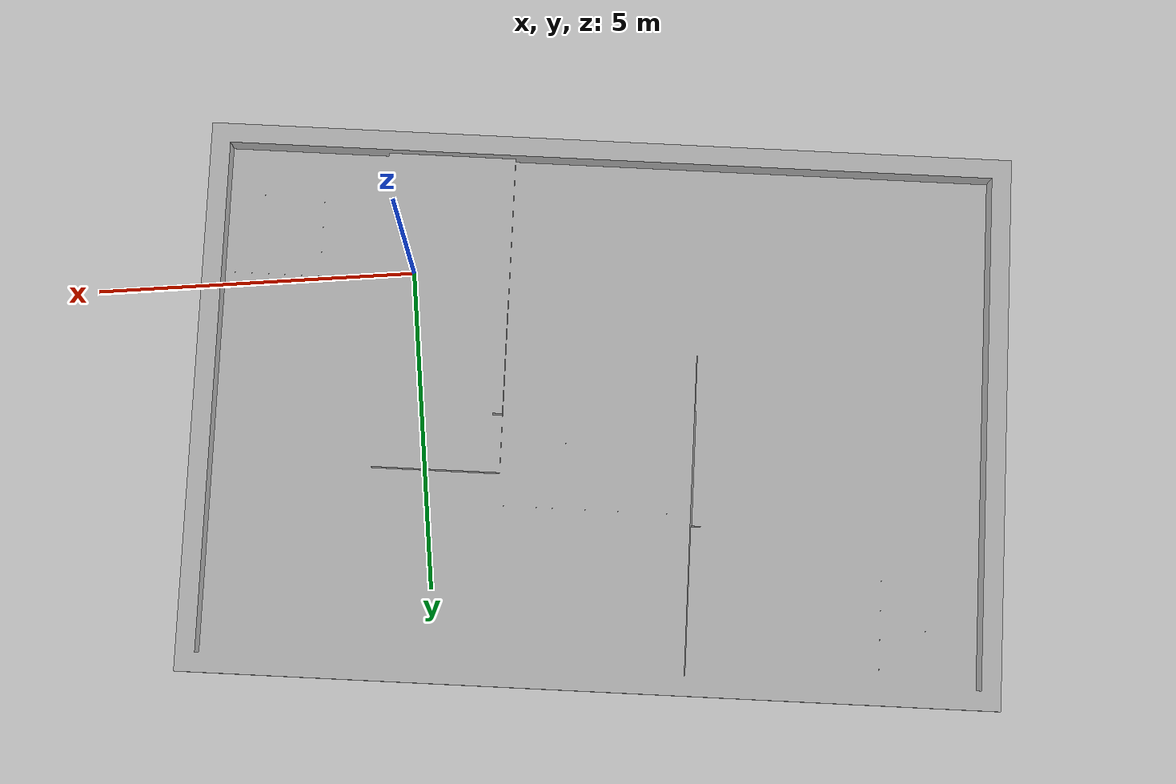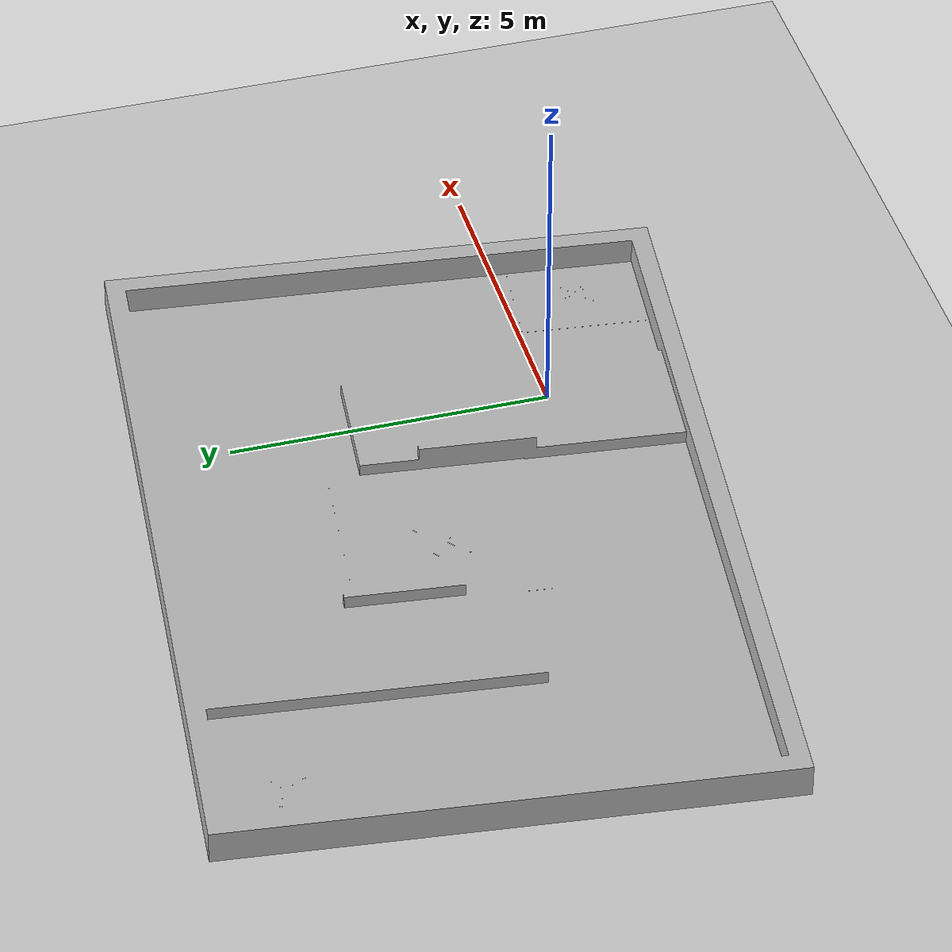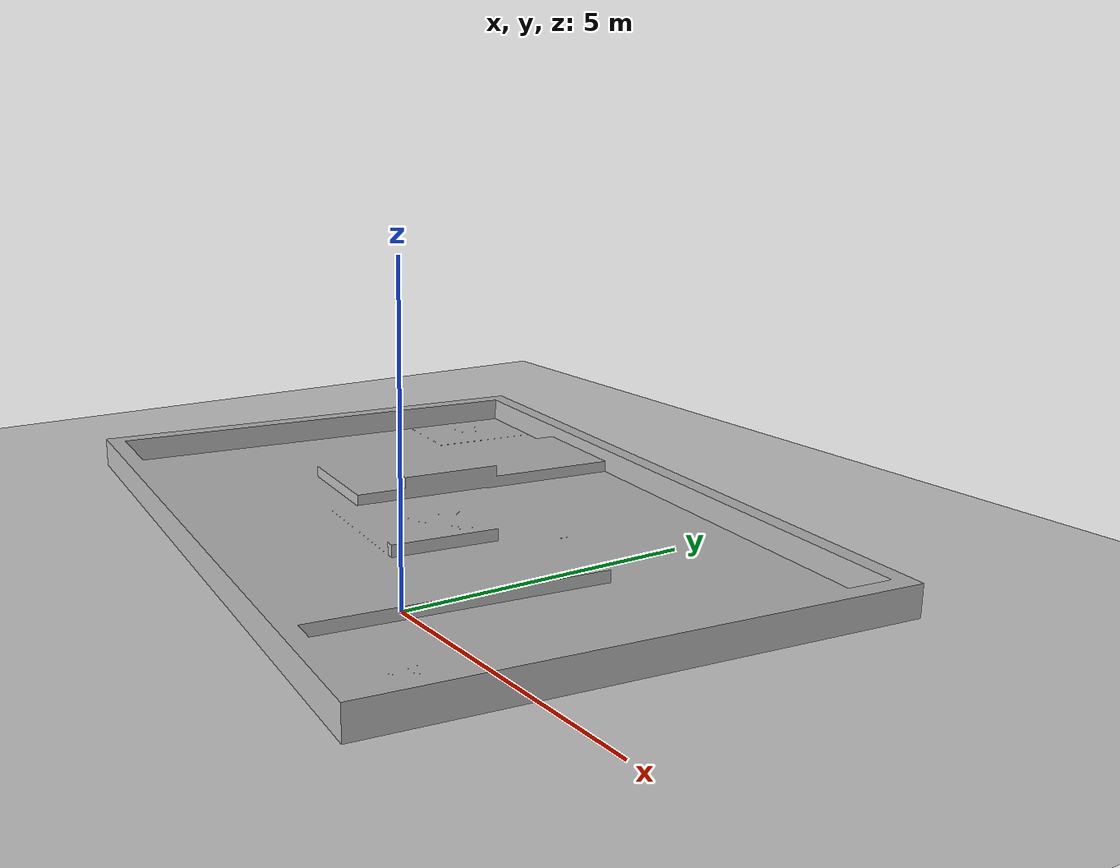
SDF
<sdf version="1.7">
 <world name="default">
  <light name="sun" type="directional">
   <pose>0 0 10 0 -0 0</pose>
   <diffuse>0.8 0.8 0.8 1</diffuse>
   <specular>0.2 0.2 0.2 1</specular>
   <attenuation>
    <range>1000</range>
    <constant>0.9</constant>
    <linear>0.01</linear>
    <quadratic>0.001</quadratic>
   </attenuation>
   <direction>-0.5 0.1 -0.9</direction>
   <spot><inner_angle>0</inner_angle><outer_angle>0</outer_angle><falloff>0</falloff></spot>
  </light>
  <model name="ground_plane">
   <static>1</static>
   <link name="link">
    <collision name="collision">
     <geometry><plane><normal>0 0 1</normal><size>100 100</size></plane></geometry>
     <surface>
      <contact><collide_bitmask>65535</collide_bitmask></contact>
      <friction><ode><mu>100</mu><mu2>50</mu2></ode></friction>
     </surface>
    </collision>
    <visual name="visual">
     <cast_shadows>0</cast_shadows>
     <geometry><plane><normal>0 0 1</normal><size>100 100</size></plane></geometry>
     <material>
      <script><uri>file://media/materials/scripts/gazebo.material</uri><name>Gazebo/Grey</name></script>
     </material>
    </visual>
   </link>
  </model>
  <gravity>0 0 -9.8</gravity>
  <magnetic_field>6e-06 2.3e-05 -4.2e-05</magnetic_field>
  <atmosphere type="adiabatic"/>
  <physics type="ode">
   <max_step_size>0.001</max_step_size>
   <real_time_factor>1</real_time_factor>
   <real_time_update_rate>1000</real_time_update_rate>
  </physics>
  <scene><ambient>0.4 0.4 0.4 1</ambient><background>0.7 0.7 0.7 1</background><shadows>1</shadows></scene>
  <audio><device>default</device></audio>
  <spherical_coordinates>
   <surface_model>EARTH_WGS84</surface_model>
   <latitude_deg>0</latitude_deg>
   <longitude_deg>0</longitude_deg>
   <elevation>0</elevation>
   <heading_deg>0</heading_deg>
  </spherical_coordinates>
  <model name="zhuangpeiti1">
   <link name="base_link">
    <inertial>
     <pose>-1e-06 0.01064 0 0 -0 0</pose>
     <mass>16223.4</mass>
     <inertia>
      <ixx>100280</ixx>
      <ixy>3.35893e-05</ixy>
      <ixz>-15414.1</ixz>
      <iyy>299096</iyy>
      <iyz>-1.80819e-07</iyz>
      <izz>199179</izz>
     </inertia>
    </inertial>
    <collision name="base_link_collision">
     <geometry><mesh><scale>1 1 1</scale><uri>model://RMUL2024_world/meshes/RMUL.STL</uri></mesh></geometry>
    </collision>
    <visual name="base_link_visual">
     <geometry><mesh><scale>1 1 1</scale><uri>model://RMUL2024_world/meshes/RMUL.STL</uri></mesh></geometry>
    </visual>
   </link>
   <pose>-2.76177 2.449 0.099982 1.5708 -3e-06 -0.109384</pose>
  </model>
 </world>
</sdf>
